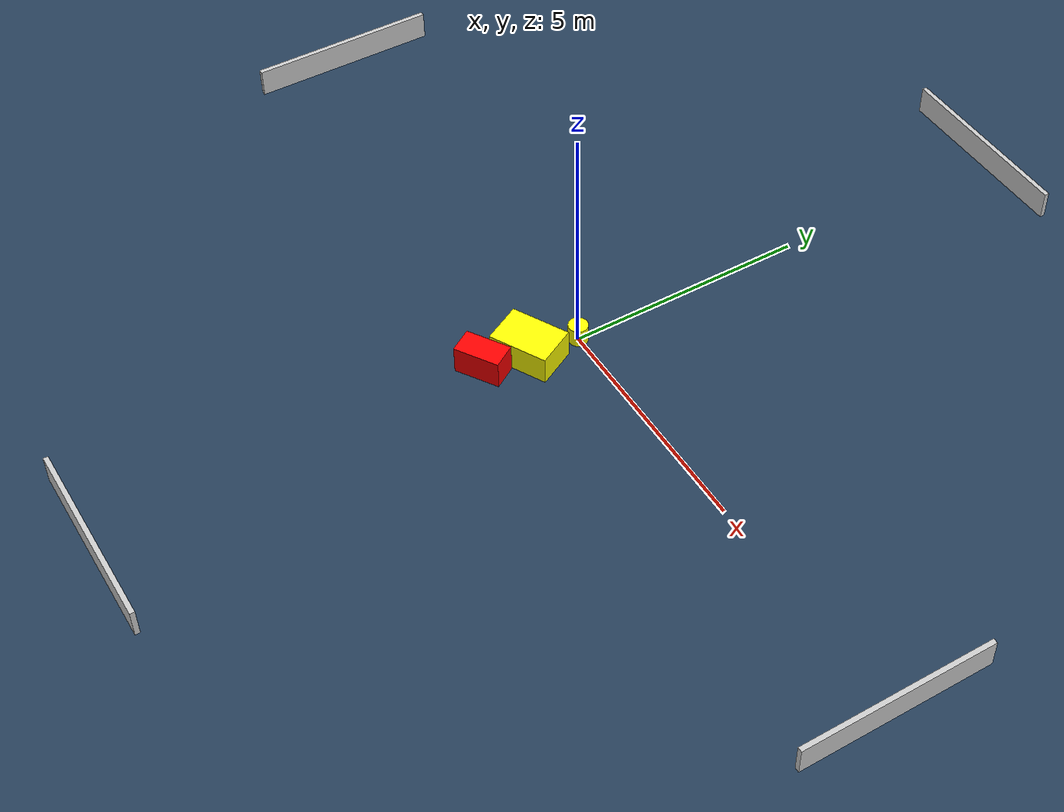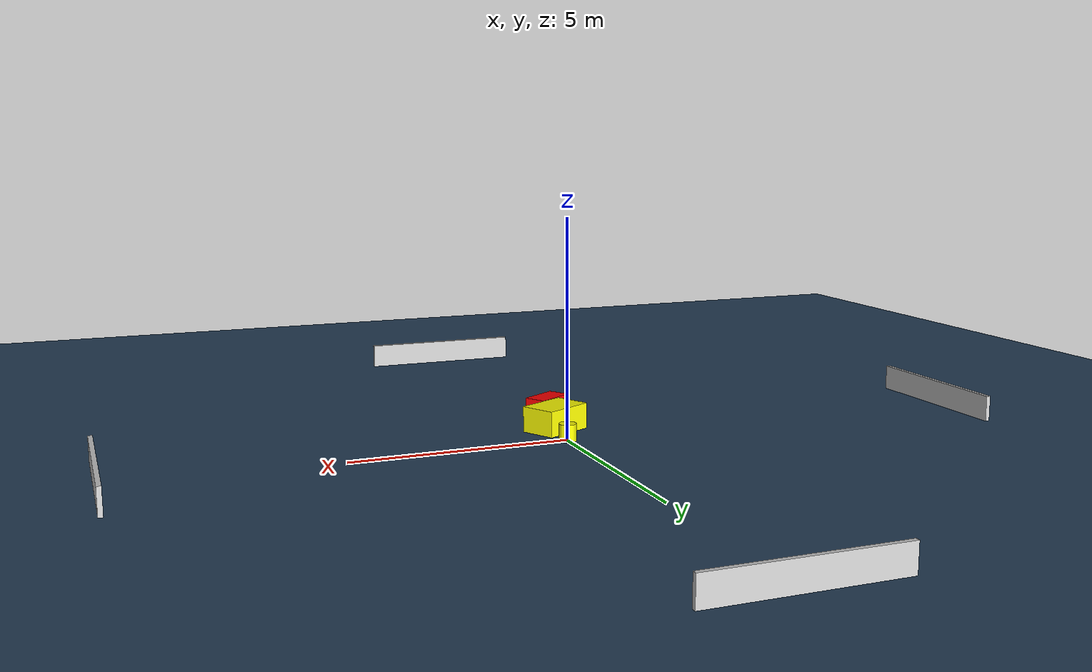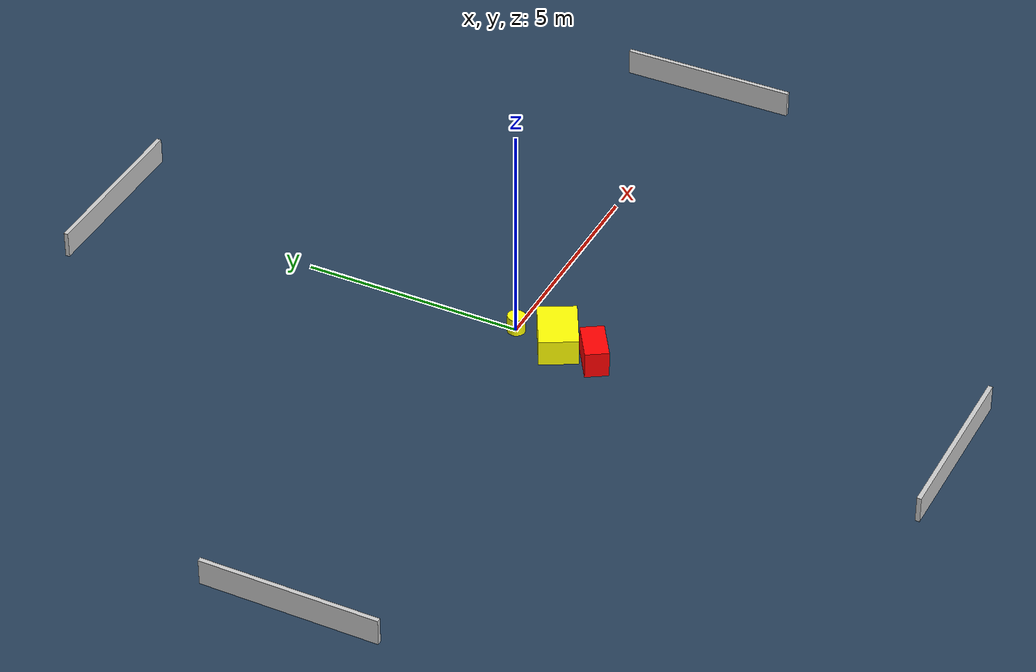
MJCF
<?xml version="1.0" ?>
<mujoco model="generated_environment">
  <option timestep="0.01" integrator="RK4" cone="elliptic"/>
  <default>
    <geom density="1"/>
  </default>
  <asset>
    <texture builtin="gradient" height="3072" name="skybox" rgb1="0.3 0.5 0.7" rgb2="0 0 0" type="skybox" width="512"/>
    <texture builtin="checker" height="300" name="groundplane" rgb1="0.2 0.3 0.4" rgb2="0.1 0.2 0.3" type="2d" width="300"/>
    <material name="groundplane" reflectance="0.2" texrepeat="5 5" texture="groundplane"/>
  </asset>
  <worldbody>
    <light dir="0 0 -1" directional="true" pos="0 0 1.5"/>
    <geom condim="3" friction="0.5 0.005 0.001" material="groundplane" name="floor" pos="0 0 0" size="0 0 0.05" type="plane"/>
    <body name="walls">
      <geom name="wall_1" condim="4" pos="-10.0 0.0 0.3" rgba="0.800000011920929 0.800000011920929 0.800000011920929 1.0" size="0.05 2.0 0.3" type="box"/>
      <geom name="wall_2" condim="4" pos="10.0 0.0 0.3" rgba="0.800000011920929 0.800000011920929 0.800000011920929 1.0" size="0.05 2.0 0.3" type="box"/>
      <geom name="wall_3" condim="4" pos="0.0 -10.0 0.3" rgba="0.800000011920929 0.800000011920929 0.800000011920929 1.0" size="2.0 0.05 0.3" type="box"/>
      <geom name="wall_4" condim="4" pos="0.0 10.0 0.3" rgba="0.800000011920929 0.800000011920929 0.800000011920929 1.0" size="2.0 0.05 0.3" type="box"/>
    </body>
    <body name="robot">
      <joint name="joint_x" type="slide" pos="0 0 0" axis="1 0 0"/>
      <joint name="joint_y" type="slide" pos="0 0 0" axis="0 1 0"/>
      <geom name="robot" type="cylinder" pos="0.0 0.0 0.2" size="0.2 0.2 0.0" mass="5.0" friction="1.0 0.005 0.0001" condim="4" rgba="1.0 1.0 0.0 1.0"/>
    </body>
    <body name="obstacle_1_movable">
      <geom name="obstacle_1_movable" condim="4" pos="-0.10418413887183144 -1.0323652381660684 0.3" euler="0 0 297.70536615576094" friction="0.0 0.005 0.001" rgba="1.0 1.0 0.0 1.0" size="0.4326347150221712 0.6209445269756675 0.3" type="box" mass="0.1"/>
      <joint type="free"/>
    </body>
    <body name="obstacle_2_static">
      <geom name="obstacle_2_static" condim="4" pos="-0.26021175519584316 -1.9676943542667023 0.3" euler="0 0 302.0405125050028" friction="0.0 0.005 0.001" rgba="1.0 0.0 0.0 1.0" size="0.2641588948741125 0.4758263888861735 0.3" type="box"/>
    </body>
  </worldbody>
  <actuator>
    <motor name="actuator_x" joint="joint_x" gear="1" ctrlrange="-1 1"/>
    <motor name="actuator_y" joint="joint_y" gear="1" ctrlrange="-1 1"/>
  </actuator>
</mujoco>
